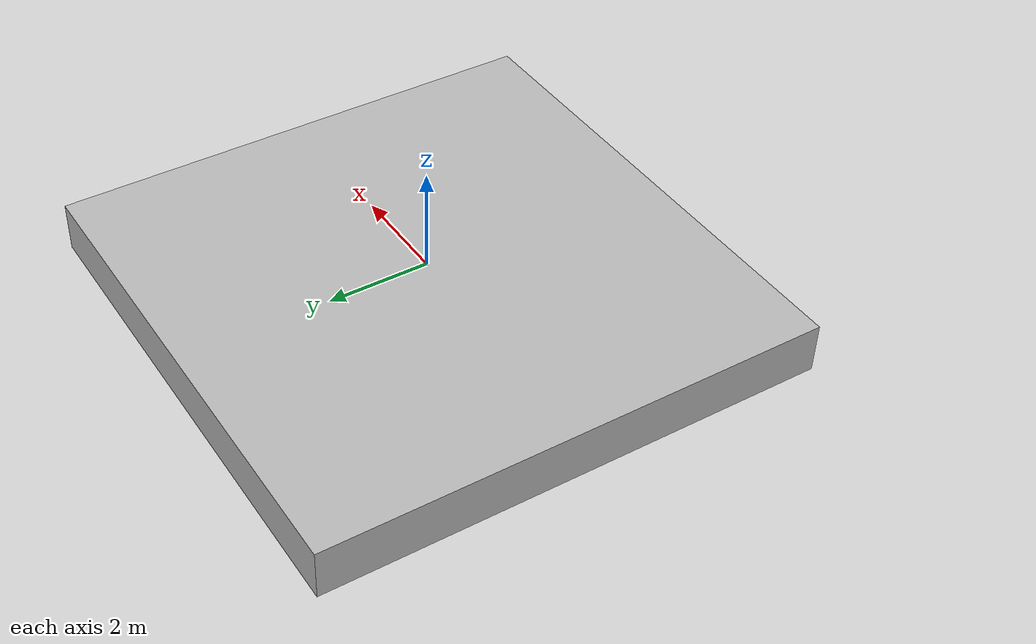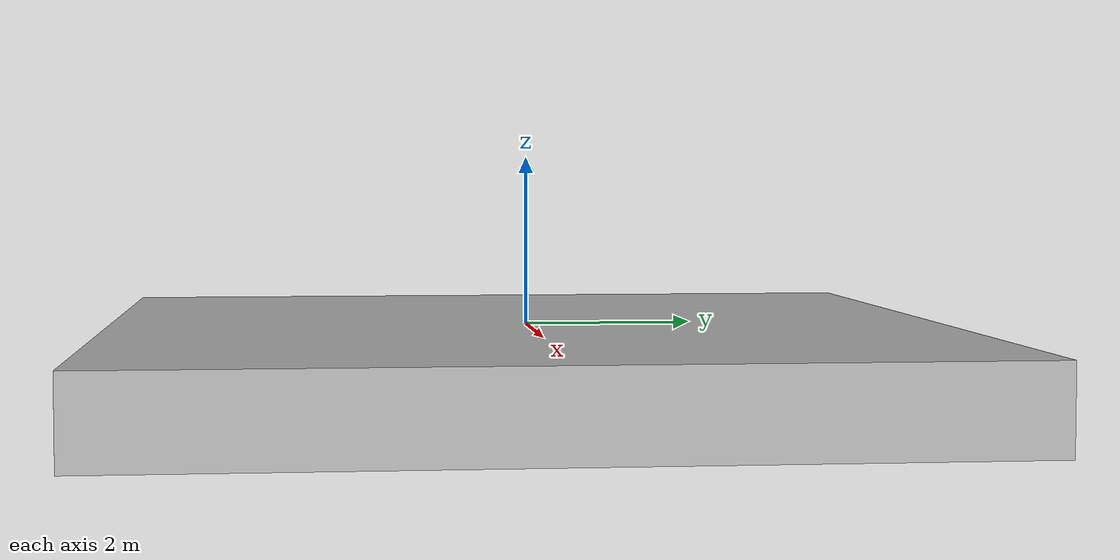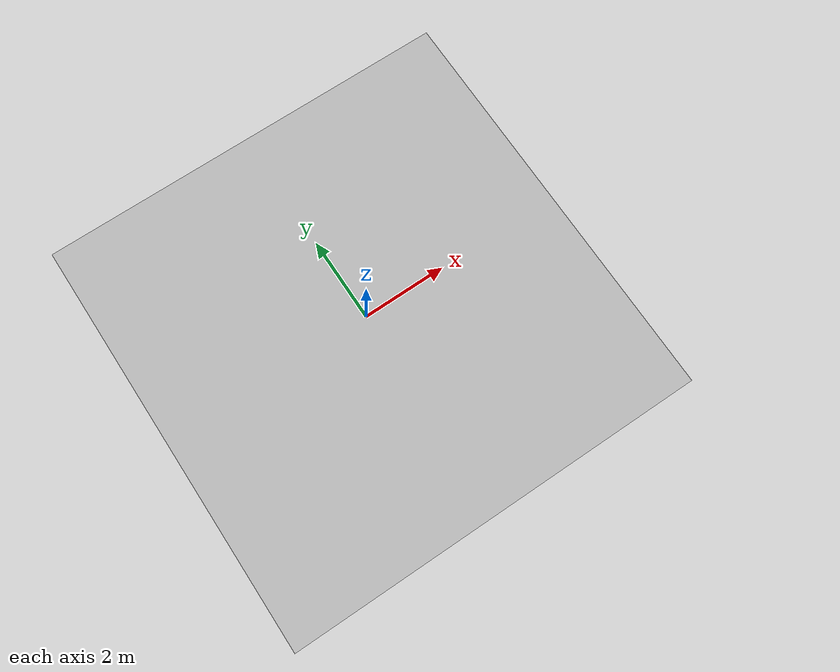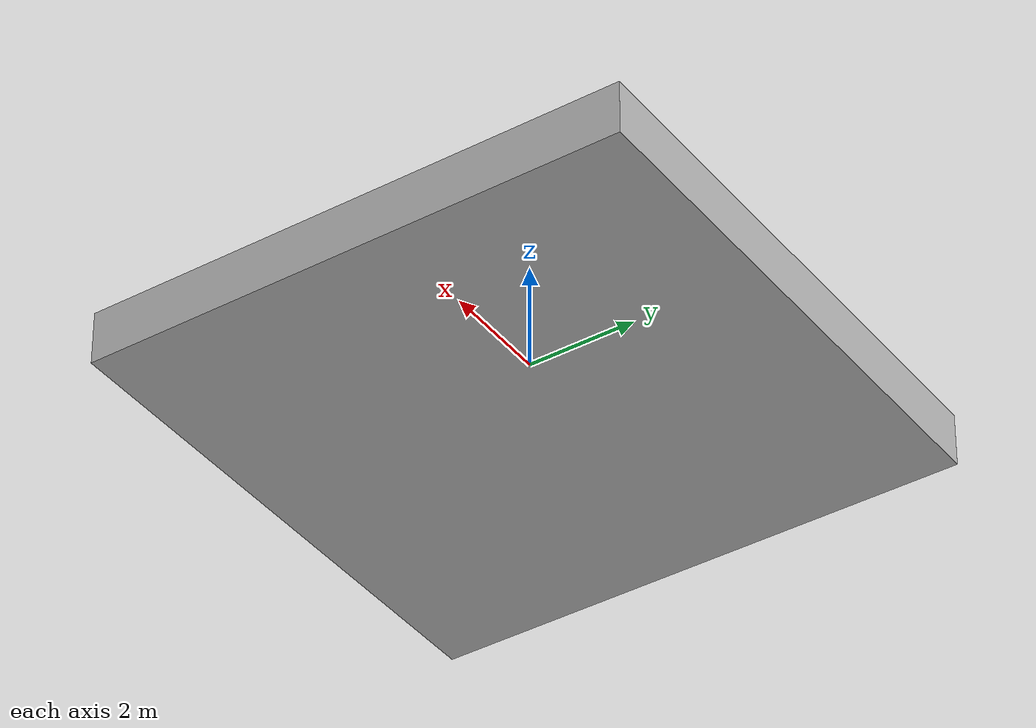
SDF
<?xml version='1.0'?>
<sdf version="1.4">
<model name="ground">
  <pose>0 0 0 0 0 0</pose>
  <static>true</static>
    <link name="ground_body">
      <inertial>
        <mass>1.0</mass>
        <inertia> <!-- inertias are tricky to compute -->
          <!-- http://gazebosim.org/tutorials?tut=inertia&cat=build_robot -->
          <ixx>0.083</ixx>       <!-- for a box: ixx = 0.083 * mass * (y*y + z*z) -->
          <ixy>0.0</ixy>         <!-- for a box: ixy = 0 -->
          <ixz>0.0</ixz>         <!-- for a box: ixz = 0 -->
          <iyy>0.083</iyy>       <!-- for a box: iyy = 0.083 * mass * (x*x + z*z) -->
          <iyz>0.0</iyz>         <!-- for a box: iyz = 0 -->
          <izz>0.083</izz>       <!-- for a box: izz = 0.083 * mass * (x*x + y*y) -->
        </inertia>
      </inertial>
      <collision name="collision">
        <pose>0 0 -.5 0 0 0</pose>
        <geometry>
          <box>
            <size>10 10 1</size>
          </box>
        </geometry>
        <surface>
          <friction>
            <ode>
              <mu>0.1</mu>
              <mu2>0.1</mu2>
            </ode>
          </friction>
        </surface>
      </collision>
      <visual name="visual">
        <pose>0 0 -.5 0 0 0</pose>
        <geometry>
          <box>
            <size>10 10 1</size>
          </box>
        </geometry>
      </visual>
    </link>
  </model>
</sdf>
